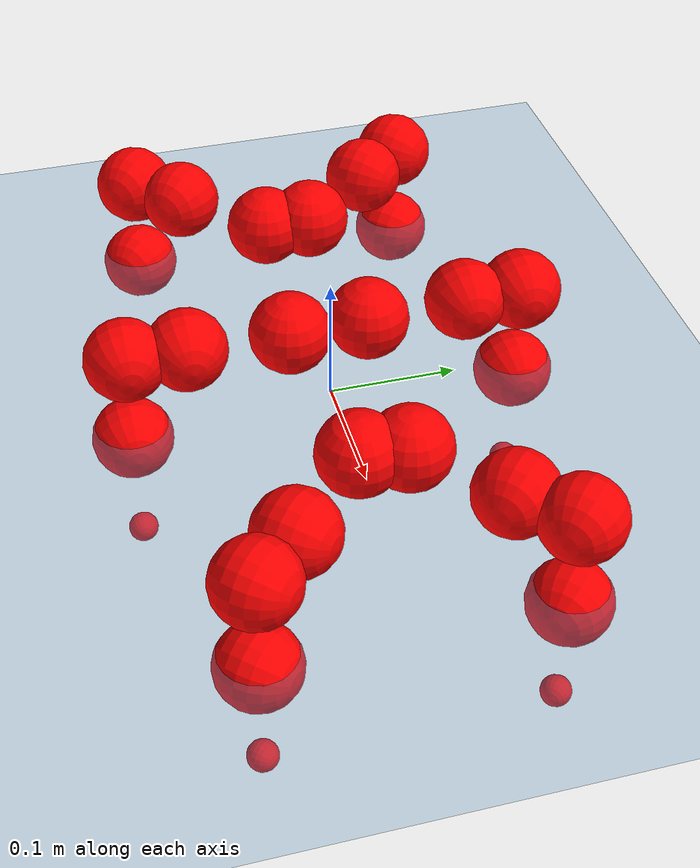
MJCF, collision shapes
<mujoco model="Golem">
  <compiler angle="radian" assetdir="assets" balanceinertia="true" inertiafromgeom="false"/>

  <option timestep="0.005" density="1.2" viscosity="2e-05"/>

  <size nkey="1"/>

  <visual>
    <quality shadowsize="8192"/>
    <map shadowclip="0.5"/>
  </visual>

  <default>
    <default class="/">
      <joint armature="0.01" damping="0.01" frictionloss="0.01"/>
      <geom contype="0" conaffinity="0" group="1" solref="-1000 -80"/>
      <site size="0.01 0.005 0.005" group="5"/>
      <general forcelimited="true" biastype="affine" gainprm="25" biasprm="0 -25 -0.5"/>
      <default class="visual">
        <geom type="mesh" group="2"/>
      </default>
      <default class="collision">
        <geom group="3"/>
      </default>
      <default class="foot">
        <geom size="0.01 0 0" condim="6" group="4" priority="1" solimp="0.015 1 0.01"/>
      </default>
      <default class="reward_collision_sphere">
        <geom group="5" rgba="1 0 0 1"/>
      </default>
    </default>
  </default>

  <asset>
    <texture type="skybox" colorspace="auto" name="//unnamed_texture_0" builtin="gradient" rgb1="0.95 0.95 0.95" rgb2="0.95 0.95 0.95" width="100" height="600"/>
    <texture type="2d" colorspace="auto" name="texplane" builtin="checker" rgb1="0.345 0.575 0.748" rgb2="0.345 0.575 0.748" markrgb="1 1 1" width="512" height="512"/>
    <material name="MatPlane" class="/" texture="texplane" texuniform="true" texrepeat="2 2" specular="0.9"/>
    <mesh name="body" class="/" file="body.stl" scale="0.001 0.001 0.001"/>
    <mesh name="coxa" class="/" file="coxa.stl" scale="0.001 0.001 0.001"/>
    <mesh name="femur" class="/" file="femur.stl" scale="0.001 0.001 0.001"/>
    <mesh name="tibia" class="/" file="tibia.stl" scale="0.001 0.001 0.001"/>
    <mesh name="tarsus" class="/" file="tarsus.stl" scale="0.001 0.001 0.001"/>
  </asset>

  <worldbody>
    <geom name="floor" class="/" size="100 100 0.125" type="plane" group="0" material="MatPlane"/>
    <light name="toplight_shadow" class="/" pos="0 0 5" dir="0.0990148 0.0990148 -0.990148" type="directional" ambient="0.04 0.04 0.04" diffuse="0.55 0.55 0.55" specular="0.12 0.12 0.12"/>
    <light name="toplight_fill" class="/" pos="0 0 5" dir="0.0990148 0.0990148 -0.990148" type="directional" castshadow="false" ambient="0.04 0.04 0.04" diffuse="0.3 0.3 0.3" specular="0.08 0.08 0.08"/>
    <body name="trunk" pos="0.000221727 -0.000220775 -0.000617483" quat="0.999999 0.000618476 -0.000817669 -0.000356382">
      <inertial pos="-0.000666757 -0.000263865 -0.00354013" quat="1 -7.36173e-05 -1.418e-05 -0.00013083" mass="1.82721" diaginertia="0.00602399 0.000153907 0.0105492"/>
      <joint name="//unnamed_joint_0" type="free"/>
      <geom name="//unnamed_geom_1" class="/" pos="0 0 0.0647624" quat="1 0 0 0" type="mesh" rgba="0.9 0.9 0.9 1" mesh="body"/>
      <site name="imu" class="/" pos="0.127332 0.00135962 0.100108" size="0.00783337"/>
      <camera name="track" class="/" pos="0 -0.868244 0" quat="0.707107 0.707107 0 0" mode="trackcom"/>
      <camera name="ego_camera" class="/" pos="0.117517 0 0.101191" quat="-0.5 -0.5 0.5 0.5"/>
      <body name="coxa_RR" pos="-0.161877 -0.0357927 0.0645481" quat="0.382199 -0.000116853 -0.000984889 -0.92408">
        <inertial pos="-0.000123413 0.000216803 0.00154048" quat="1 0.000318516 0.000317558 -0.0004487" mass="0.0978154" diaginertia="0.00609664 0.000155582 0.0107516"/>
        <joint name="coxa_joint_RR" class="/" pos="0 0 0" axis="0.00571139 -0.00319674 -0.999979" range="-3.15656 3.10308" armature="0.00778751" damping="0.00102687" frictionloss="0.00775195"/>
        <geom name="//unnamed_geom_2" class="/" type="mesh" rgba="0.2 0.2 0.2 1" mesh="coxa"/>
        <geom name="//unnamed_geom_3" class="reward_collision_sphere" size="0.0313335" pos="-0.0271192 0 0"/>
        <body name="femur_RR" pos="0.0552195 0.00239745 -0.00102075" quat="0.499783 -0.500056 0.500038 0.500122">
          <inertial pos="-0.00034634 -1.89336e-05 0.000558824" quat="0.999997 0.000362983 0.00225528 -0.000916667" mass="0.0966875" diaginertia="0.00599452 0.000153549 0.0107619"/>
          <joint name="femur_joint_RR" class="/" pos="0 0 0" axis="-0.00199387 0.00040232 -0.999998" range="-3.10534 3.13935" armature="0.00728074" damping="0.000525283" frictionloss="0.00820047"/>
          <geom name="//unnamed_geom_4" class="/" type="mesh" rgba="0.9 0.9 0.9 1" mesh="femur"/>
          <geom name="//unnamed_geom_5" class="reward_collision_sphere" size="0.0313335"/>
          <body name="tibia_RR" pos="-0.00121497 -0.045788 0.00211137" quat="6.99449e-05 1 -0.000184611 -1.65469e-05">
            <inertial pos="0.00100526 0.000246985 0.000440765" quat="0.999997 -0.000122242 -0.00211915 0.00149008" mass="0.0974132" diaginertia="0.00610912 0.000153788 0.0104393"/>
            <joint name="tibia_joint_RR" class="/" pos="0 0 0" axis="0.00291256 0.00762999 0.999967" range="-3.10249 3.14075" armature="0.00744739" damping="0" frictionloss="0.00778685"/>
            <geom name="//unnamed_geom_6" class="/" type="mesh" rgba="0.2 0.2 0.2 1" mesh="tibia"/>
            <geom name="//unnamed_geom_7" class="reward_collision_sphere" size="0.0313335"/>
            <body name="tarsus_RR" pos="0.0775438 0.000416768 -0.00165036" quat="1 8.68629e-05 0.00040295 0.000145254">
              <inertial pos="0.0553082 0.000619363 -0.000381714" quat="0.499723 0.500588 0.499786 0.499903" mass="0.0953203" diaginertia="0.00595785 0.000153821 0.0105382"/>
              <joint name="tarsus_joint_RR" class="/" pos="0 0 0" axis="-0.00312546 0.000721172 0.999995" range="-3.12301 3.13467" armature="0.00819109" damping="0" frictionloss="0.00778329"/>
              <geom name="//unnamed_geom_8" class="/" type="mesh" rgba="0.9 0.9 0.9 1" mesh="tarsus"/>
              <geom name="foot_1" class="foot" size="0.00741098" pos="0.101245 0 0" quat="0 -0.707107 0 0.707107"/>
              <geom name="//unnamed_geom_10" class="reward_collision_sphere" size="0.0313335"/>
              <geom name="//unnamed_geom_11" class="reward_collision_sphere" size="0.01175" pos="0.0971773 0 0"/>
              <site name="foot_1" class="foot" pos="0.101245 0 0" quat="0 -0.707107 0 0.707107" size="0.00783337"/>
            </body>
          </body>
        </body>
      </body>
      <body name="coxa_RM" pos="-0.000190132 -0.058082 0.0649549" quat="0.706899 0.00062502 0.000453156 -0.707314">
        <inertial pos="-0.000268768 -0.00139807 0.00034475" quat="0.999997 -0.000262682 0.00116596 0.00230162" mass="0.0953808" diaginertia="0.00595527 0.000155372 0.0107447"/>
        <joint name="coxa_joint_RM" class="/" pos="0 0 0" axis="0.00832445 -0.00378955 -0.999958" range="-3.14253 3.16088" armature="0.00863185" damping="0.00177605" frictionloss="0.00764714"/>
        <geom name="//unnamed_geom_12" class="/" type="mesh" rgba="0.2 0.2 0.2 1" mesh="coxa"/>
        <geom name="//unnamed_geom_13" class="reward_collision_sphere" size="0.0313335" pos="-0.0271192 0 0"/>
        <body name="femur_RM" pos="0.0511815 -0.000305198 -8.80006e-05" quat="0.500054 -0.499814 0.500025 0.500107">
          <inertial pos="1.54153e-05 -0.000744932 0.000193243" quat="0.999995 -0.0016593 0.00129508 0.00214398" mass="0.0958844" diaginertia="0.00593784 0.000157248 0.0108173"/>
          <joint name="femur_joint_RM" class="/" pos="0 0 0" axis="-0.00133034 0.0038649 -0.999992" range="-3.126 3.13865" armature="0.00760274" damping="0.0020625" frictionloss="0.0079317"/>
          <geom name="//unnamed_geom_14" class="/" type="mesh" rgba="0.9 0.9 0.9 1" mesh="femur"/>
          <geom name="//unnamed_geom_15" class="reward_collision_sphere" size="0.0313335"/>
          <body name="tibia_RM" pos="0.000166404 -0.0452184 -0.000182308" quat="7.14481e-06 1 -0.000215051 0.000199806">
            <inertial pos="-0.000849612 -0.00114719 -0.00145178" quat="0.999979 0.00102186 0.00123034 -0.00627489" mass="0.0955396" diaginertia="0.00614983 0.000154605 0.0107466"/>
            <joint name="tibia_joint_RM" class="/" pos="0 0 0" axis="-0.00144773 0.00165247 0.999998" range="-3.14248 3.15611" armature="0.00843119" damping="0.000101657" frictionloss="0.008645"/>
            <geom name="//unnamed_geom_16" class="/" type="mesh" rgba="0.2 0.2 0.2 1" mesh="tibia"/>
            <geom name="//unnamed_geom_17" class="reward_collision_sphere" size="0.0313335"/>
            <body name="tarsus_RM" pos="0.0779084 0.000730169 0.00191599" quat="1 0.000132675 0.000158983 5.46408e-05">
              <inertial pos="0.0545562 0.00161964 0.000116687" quat="0.500695 0.499445 0.499113 0.500744" mass="0.0957654" diaginertia="0.00597981 0.000152349 0.0105861"/>
              <joint name="tarsus_joint_RM" class="/" pos="0 0 0" axis="-0.000773887 0.000242201 1" range="-3.10196 3.12426" armature="0.00868627" damping="0" frictionloss="0.00794402"/>
              <geom name="//unnamed_geom_18" class="/" type="mesh" rgba="0.9 0.9 0.9 1" mesh="tarsus"/>
              <geom name="foot_2" class="foot" size="0.00838718" pos="0.101245 0 0" quat="0 -0.707107 0 0.707107"/>
              <geom name="//unnamed_geom_20" class="reward_collision_sphere" size="0.0313335"/>
              <geom name="//unnamed_geom_21" class="reward_collision_sphere" size="0.01175" pos="0.0971773 0 0"/>
              <site name="foot_2" class="foot" pos="0.101245 0 0" quat="0 -0.707107 0 0.707107" size="0.00783337"/>
            </body>
          </body>
        </body>
      </body>
      <body name="coxa_RF" pos="0.160827 -0.0366881 0.0670085" quat="0.923693 -0.000325498 0.000276614 -0.383134">
        <inertial pos="-0.000333865 -0.00246849 0.000404794" quat="0.999997 0.000970372 0.0019663 0.000929112" mass="0.0974066" diaginertia="0.00607983 0.00015391 0.0106217"/>
        <joint name="coxa_joint_RF" class="/" pos="0 0 0" axis="0.00336914 0.00250502 -0.999991" range="-3.12019 3.17302" armature="0.00788915" damping="0" frictionloss="0.0076801"/>
        <geom name="//unnamed_geom_22" class="/" type="mesh" rgba="0.2 0.2 0.2 1" mesh="coxa"/>
        <geom name="//unnamed_geom_23" class="reward_collision_sphere" size="0.0313335" pos="-0.0271192 0 0"/>
        <body name="femur_RF" pos="0.0563276 0.00098162 -0.00161685" quat="0.499777 -0.500176 0.499489 0.500557">
          <inertial pos="0.000335921 -0.0009334 0.00178044" quat="0.999957 0.00275322 -0.00195583 0.00868201" mass="0.0972515" diaginertia="0.00605896 0.00015105 0.0106994"/>
          <joint name="femur_joint_RF" class="/" pos="0 0 0" axis="0.000483186 -0.00441701 -0.99999" stiffness="0.000600225" range="-3.13214 3.13758" armature="0.00787435" damping="0" frictionloss="0.00718534"/>
          <geom name="//unnamed_geom_24" class="/" type="mesh" rgba="0.9 0.9 0.9 1" mesh="femur"/>
          <geom name="//unnamed_geom_25" class="reward_collision_sphere" size="0.0313335"/>
          <body name="tibia_RF" pos="0.000537458 -0.0485934 3.05954e-05" quat="-0.000358204 1 -0.000108313 -0.000111694">
            <inertial pos="9.01859e-05 -7.52194e-05 0.000982602" quat="0.999999 0.000648775 -0.00100815 0.000379799" mass="0.0960161" diaginertia="0.00603159 0.00015617 0.0107725"/>
            <joint name="tibia_joint_RF" class="/" pos="0 0 0" axis="0.00296007 -0.00472026 0.999984" range="-3.12931 3.14459" armature="0.00817163" damping="0.00806429" frictionloss="0.00785803"/>
            <geom name="//unnamed_geom_26" class="/" type="mesh" rgba="0.2 0.2 0.2 1" mesh="tibia"/>
            <geom name="//unnamed_geom_27" class="reward_collision_sphere" size="0.0313335"/>
            <body name="tarsus_RF" pos="0.0792034 0.00176385 2.68691e-05" quat="1 0.000348735 0.000624387 0.000493382">
              <inertial pos="0.0523964 -0.000220911 0.00210399" quat="0.500868 0.499474 0.497711 0.501936" mass="0.0944185" diaginertia="0.00602553 0.000150383 0.0104218"/>
              <joint name="tarsus_joint_RF" class="/" pos="0 0 0" axis="0.00260879 -0.011609 0.999929" range="-3.10169 3.12336" armature="0.00779981" damping="0" frictionloss="0.00792574"/>
              <geom name="//unnamed_geom_28" class="/" type="mesh" rgba="0.9 0.9 0.9 1" mesh="tarsus"/>
              <geom name="foot_3" class="foot" size="0.00773453" pos="0.101245 0 0" quat="0 -0.707107 0 0.707107"/>
              <geom name="//unnamed_geom_30" class="reward_collision_sphere" size="0.0313335"/>
              <geom name="//unnamed_geom_31" class="reward_collision_sphere" size="0.01175" pos="0.0971773 0 0"/>
              <site name="foot_3" class="foot" pos="0.101245 0 0" quat="0 -0.707107 0 0.707107" size="0.00783337"/>
            </body>
          </body>
        </body>
      </body>
      <body name="coxa_LR" pos="-0.159207 0.0386382 0.0667487" quat="0.383026 -0.000470899 0.000658477 0.923737">
        <inertial pos="0.00193279 -0.000213087 0.0011647" quat="0.999992 0.00262085 -0.00271767 -0.00141191" mass="0.0948675" diaginertia="0.00601837 0.000152421 0.0104874"/>
        <joint name="coxa_joint_LR" class="/" pos="0 0 0" axis="-0.00306773 -0.00670881 -0.999973" range="-3.13157 3.14887" armature="0.00819271" damping="0.00863565" frictionloss="0.00795808"/>
        <geom name="//unnamed_geom_32" class="/" type="mesh" rgba="0.2 0.2 0.2 1" mesh="coxa"/>
        <geom name="//unnamed_geom_33" class="reward_collision_sphere" size="0.0313335" pos="-0.0271192 0 0"/>
        <body name="femur_LR" pos="0.054746 -0.00406171 -0.00223134" quat="0.499592 -0.500261 0.499495 0.50065">
          <inertial pos="-0.00126567 -0.000410142 0.000598177" quat="0.999999 -0.000239649 0.00142364 -0.000543863" mass="0.0953282" diaginertia="0.00600221 0.000153011 0.0104372"/>
          <joint name="femur_joint_LR" class="/" pos="0 0 0" axis="-0.0018211 -0.00133844 0.999997" stiffness="0.000435417" range="-3.15299 3.18287" armature="0.00766672" damping="0.00614828" frictionloss="0.00864871"/>
          <geom name="//unnamed_geom_34" class="/" type="mesh" rgba="0.9 0.9 0.9 1" mesh="femur"/>
          <geom name="//unnamed_geom_35" class="reward_collision_sphere" size="0.0313335"/>
          <body name="tibia_LR" pos="0.000509647 -0.0490614 -0.00277463" quat="4.68929e-05 1 1.76987e-05 -0.00018814">
            <inertial pos="-0.00106279 -0.000377353 0.000534708" quat="0.999993 0.00203561 -0.00249169 0.00208388" mass="0.0969464" diaginertia="0.00604996 0.000155339 0.0106377"/>
            <joint name="tibia_joint_LR" class="/" pos="0 0 0" axis="-0.000857967 0.000907114 -0.999999" range="-3.15634 3.10967" armature="0.00710497" damping="0" frictionloss="0.00805078"/>
            <geom name="//unnamed_geom_36" class="/" type="mesh" rgba="0.2 0.2 0.2 1" mesh="tibia"/>
            <geom name="//unnamed_geom_37" class="reward_collision_sphere" size="0.0313335"/>
            <body name="tarsus_LR" pos="0.0796329 0.000172778 -0.000214982" quat="1 0.000102986 -6.0717e-05 0.000421964">
              <inertial pos="0.0556866 0.000828643 0.000460803" quat="0.499781 0.499901 0.500079 0.500239" mass="0.0958071" diaginertia="0.00600379 0.000155345 0.0105331"/>
              <joint name="tarsus_joint_LR" class="/" pos="0 0 0" axis="-0.000652026 -0.00195016 -0.999998" range="-3.10401 3.13527" armature="0.00780751" damping="0" frictionloss="0.00792563"/>
              <geom name="//unnamed_geom_38" class="/" type="mesh" rgba="0.9 0.9 0.9 1" mesh="tarsus"/>
              <geom name="foot_4" class="foot" size="0.00740908" pos="0.101245 0 0" quat="0.707107 0 -0.707107 0"/>
              <geom name="//unnamed_geom_40" class="reward_collision_sphere" size="0.0313335"/>
              <geom name="//unnamed_geom_41" class="reward_collision_sphere" size="0.01175" pos="0.0971773 0 0"/>
              <site name="foot_4" class="foot" pos="0.101245 0 0" quat="0.707107 0 -0.707107 0" size="0.00783337"/>
            </body>
          </body>
        </body>
      </body>
      <body name="coxa_LM" pos="-0.00341229 0.0574484 0.0642496" quat="0.707343 0.000744227 -0.00106197 0.706869">
        <inertial pos="0.00117994 -0.000269082 0.00082517" quat="0.999997 0.000246645 -0.00235582 0.000723246" mass="0.100018" diaginertia="0.00636251 0.000158447 0.0107877"/>
        <joint name="coxa_joint_LM" class="/" pos="0 0 0" axis="0.0020746 9.03402e-05 -0.999998" stiffness="0.00453575" range="-3.15969 3.1435" armature="0.00772437" damping="0.00824772" frictionloss="0.00817876"/>
        <geom name="//unnamed_geom_42" class="/" type="mesh" rgba="0.2 0.2 0.2 1" mesh="coxa"/>
        <geom name="//unnamed_geom_43" class="reward_collision_sphere" size="0.0313335" pos="-0.0271192 0 0"/>
        <body name="femur_LM" pos="0.0505978 0.00264942 0.000651476" quat="0.500097 -0.499811 0.499954 0.500137">
          <inertial pos="8.8211e-05 -0.000349251 -4.28195e-05" quat="0.999999 -0.000357455 0.00059563 -0.000869481" mass="0.093139" diaginertia="0.00595262 0.000150198 0.0103614"/>
          <joint name="femur_joint_LM" class="/" pos="0 0 0" axis="0.000378595 0.000503758 1" range="-3.15179 3.12841" armature="0.00805136" damping="0" frictionloss="0.00783258"/>
          <geom name="//unnamed_geom_44" class="/" type="mesh" rgba="0.9 0.9 0.9 1" mesh="femur"/>
          <geom name="//unnamed_geom_45" class="reward_collision_sphere" size="0.0313335"/>
          <body name="tibia_LM" pos="0.000545899 -0.0454752 0.00176454" quat="0.000130193 1 7.29788e-05 -3.8663e-05">
            <inertial pos="-0.00191494 0.000475795 0.000228384" quat="1 0.000184588 1.23464e-07 -0.000218149" mass="0.0968596" diaginertia="0.00593509 0.000153329 0.0106458"/>
            <joint name="tibia_joint_LM" class="/" pos="0 0 0" axis="-0.0010677 0.00241114 -0.999997" range="-3.12808 3.13731" armature="0.00793272" damping="0.0029361" frictionloss="0.00798636"/>
            <geom name="//unnamed_geom_46" class="/" type="mesh" rgba="0.2 0.2 0.2 1" mesh="tibia"/>
            <geom name="//unnamed_geom_47" class="reward_collision_sphere" size="0.0313335"/>
            <body name="tarsus_LM" pos="0.0801966 0.000236654 -0.00145931" quat="1 0.000186817 9.58372e-05 -0.000228541">
              <inertial pos="0.054766 0.000437481 -7.54771e-05" quat="0.499506 0.498361 0.500416 0.501712" mass="0.0962368" diaginertia="0.00608188 0.000154435 0.0107558"/>
              <joint name="tarsus_joint_LM" class="/" pos="0 0 0" axis="0.00115498 -0.00211972 -0.999997" stiffness="0.00157132" range="-3.1541 3.12854" armature="0.00783047" damping="0.00758507" frictionloss="0.00743154"/>
              <geom name="//unnamed_geom_48" class="/" type="mesh" rgba="0.9 0.9 0.9 1" mesh="tarsus"/>
              <geom name="foot_5" class="foot" size="0.00788238" pos="0.101245 0 0" quat="0.707107 0 -0.707107 0"/>
              <geom name="//unnamed_geom_50" class="reward_collision_sphere" size="0.0313335"/>
              <geom name="//unnamed_geom_51" class="reward_collision_sphere" size="0.01175" pos="0.0971773 0 0"/>
              <site name="foot_5" class="foot" pos="0.101245 0 0" quat="0.707107 0 -0.707107 0" size="0.00783337"/>
            </body>
          </body>
        </body>
      </body>
      <body name="coxa_LF" pos="0.162634 0.0375559 0.0651759" quat="0.923896 0.000100152 2.95198e-06 0.382644">
        <inertial pos="-0.000547687 -0.000309521 -0.000244079" quat="0.999995 0.00159894 -0.000649132 0.00265333" mass="0.0949752" diaginertia="0.00598971 0.000150271 0.0104795"/>
        <joint name="coxa_joint_LF" class="/" pos="0 0 0" axis="0.00231146 -0.00339925 -0.999992" range="-3.14447 3.15813" armature="0.00783812" damping="0" frictionloss="0.00760083"/>
        <geom name="//unnamed_geom_52" class="/" type="mesh" rgba="0.2 0.2 0.2 1" mesh="coxa"/>
        <geom name="//unnamed_geom_53" class="reward_collision_sphere" size="0.0313335" pos="-0.0271192 0 0"/>
        <body name="femur_LF" pos="0.0529247 -0.00140564 -0.00239432" quat="0.49995 -0.500056 0.500068 0.499925">
          <inertial pos="6.92147e-05 0.000304674 -0.000390096" quat="0.999944 0.00430641 0.00561756 0.00790849" mass="0.0964497" diaginertia="0.00612456 0.000151437 0.0106635"/>
          <joint name="femur_joint_LF" class="/" pos="0 0 0" axis="-0.00192494 0.00255375 0.999995" range="-3.13407 3.15479" armature="0.007626" damping="0" frictionloss="0.00696992"/>
          <geom name="//unnamed_geom_54" class="/" type="mesh" rgba="0.9 0.9 0.9 1" mesh="femur"/>
          <geom name="//unnamed_geom_55" class="reward_collision_sphere" size="0.0313335"/>
          <body name="tibia_LF" pos="1.3334e-05 -0.047087 0.000198124" quat="-0.000174706 1 -0.000159385 -6.76568e-05">
            <inertial pos="-2.9889e-05 -0.000606382 0.000202399" quat="0.999995 -0.000595131 0.00313657 0.000778952" mass="0.0962384" diaginertia="0.00610872 0.000155467 0.0106843"/>
            <joint name="tibia_joint_LF" class="/" pos="0 0 0" axis="-0.00249678 -0.001641 -0.999996" range="-3.18041 3.14594" armature="0.00759874" damping="3.51791e-05" frictionloss="0.00776478"/>
            <geom name="//unnamed_geom_56" class="/" type="mesh" rgba="0.2 0.2 0.2 1" mesh="tibia"/>
            <geom name="//unnamed_geom_57" class="reward_collision_sphere" size="0.0313335"/>
            <body name="tarsus_LF" pos="0.0802454 -0.000277579 0.00037234" quat="1 1.03652e-05 -1.03869e-05 -2.08929e-05">
              <inertial pos="0.0562752 0.000898939 0.00231005" quat="0.500585 0.499697 0.499283 0.500434" mass="0.0975631" diaginertia="0.00603936 0.000156243 0.0108098"/>
              <joint name="tarsus_joint_LF" class="/" pos="0 0 0" axis="-0.00212587 -0.00461799 -0.999987" stiffness="0.0264626" range="-3.13869 3.13016" armature="0.00787746" damping="0.0271265" frictionloss="0.00797336"/>
              <geom name="//unnamed_geom_58" class="/" type="mesh" rgba="0.9 0.9 0.9 1" mesh="tarsus"/>
              <geom name="foot_6" class="foot" size="0.00792405" pos="0.101245 0 0" quat="0.707107 0 -0.707107 0"/>
              <geom name="//unnamed_geom_60" class="reward_collision_sphere" size="0.0313335"/>
              <geom name="//unnamed_geom_61" class="reward_collision_sphere" size="0.01175" pos="0.0971773 0 0"/>
              <site name="foot_6" class="foot" pos="0.101245 0 0" quat="0.707107 0 -0.707107 0" size="0.00783337"/>
            </body>
          </body>
        </body>
      </body>
    </body>
  </worldbody>

  <contact>
    <pair class="/" geom1="floor" geom2="foot_1" name="//unnamed_contact_0"/>
    <pair class="/" geom1="floor" geom2="foot_2" name="//unnamed_contact_1"/>
    <pair class="/" geom1="floor" geom2="foot_3" name="//unnamed_contact_2"/>
    <pair class="/" geom1="floor" geom2="foot_4" name="//unnamed_contact_3"/>
    <pair class="/" geom1="floor" geom2="foot_5" name="//unnamed_contact_4"/>
    <pair class="/" geom1="floor" geom2="foot_6" name="//unnamed_contact_5"/>
  </contact>

  <actuator>
    <general name="coxa_joint_RR" class="/" joint="coxa_joint_RR" forcerange="-5.82485 5.82485" gainprm="17.931" biasprm="0 -17.931 -0.387501"/>
    <general name="femur_joint_RR" class="/" joint="femur_joint_RR" forcerange="-5.52448 5.52448" gainprm="17.931" biasprm="0 -17.931 -0.387501"/>
    <general name="tibia_joint_RR" class="/" joint="tibia_joint_RR" forcerange="-5.85349 5.85349" gainprm="17.931" biasprm="0 -17.931 -0.387501"/>
    <general name="tarsus_joint_RR" class="/" joint="tarsus_joint_RR" forcerange="-5.67883 5.67883" gainprm="17.931" biasprm="0 -17.931 -0.387501"/>
    <general name="coxa_joint_RM" class="/" joint="coxa_joint_RM" forcerange="-5.84035 5.84035" gainprm="17.931" biasprm="0 -17.931 -0.387501"/>
    <general name="femur_joint_RM" class="/" joint="femur_joint_RM" forcerange="-5.9658 5.9658" gainprm="17.931" biasprm="0 -17.931 -0.387501"/>
    <general name="tibia_joint_RM" class="/" joint="tibia_joint_RM" forcerange="-5.90499 5.90499" gainprm="17.931" biasprm="0 -17.931 -0.387501"/>
    <general name="tarsus_joint_RM" class="/" joint="tarsus_joint_RM" forcerange="-6.1602 6.1602" gainprm="17.931" biasprm="0 -17.931 -0.387501"/>
    <general name="coxa_joint_RF" class="/" joint="coxa_joint_RF" forcerange="-6.06626 6.06626" gainprm="17.931" biasprm="0 -17.931 -0.387501"/>
    <general name="femur_joint_RF" class="/" joint="femur_joint_RF" forcerange="-5.36748 5.36748" gainprm="17.931" biasprm="0 -17.931 -0.387501"/>
    <general name="tibia_joint_RF" class="/" joint="tibia_joint_RF" forcerange="-5.9236 5.9236" gainprm="17.931" biasprm="0 -17.931 -0.387501"/>
    <general name="tarsus_joint_RF" class="/" joint="tarsus_joint_RF" forcerange="-5.79286 5.79286" gainprm="17.931" biasprm="0 -17.931 -0.387501"/>
    <general name="coxa_joint_LR" class="/" joint="coxa_joint_LR" forcerange="-5.5702 5.5702" gainprm="17.931" biasprm="0 -17.931 -0.387501"/>
    <general name="femur_joint_LR" class="/" joint="femur_joint_LR" forcerange="-5.65481 5.65481" gainprm="17.931" biasprm="0 -17.931 -0.387501"/>
    <general name="tibia_joint_LR" class="/" joint="tibia_joint_LR" forcerange="-5.91539 5.91539" gainprm="17.931" biasprm="0 -17.931 -0.387501"/>
    <general name="tarsus_joint_LR" class="/" joint="tarsus_joint_LR" forcerange="-5.63652 5.63652" gainprm="17.931" biasprm="0 -17.931 -0.387501"/>
    <general name="coxa_joint_LM" class="/" joint="coxa_joint_LM" forcerange="-5.69989 5.69989" gainprm="17.931" biasprm="0 -17.931 -0.387501"/>
    <general name="femur_joint_LM" class="/" joint="femur_joint_LM" forcerange="-5.73779 5.73779" gainprm="17.931" biasprm="0 -17.931 -0.387501"/>
    <general name="tibia_joint_LM" class="/" joint="tibia_joint_LM" forcerange="-5.28366 5.28366" gainprm="17.931" biasprm="0 -17.931 -0.387501"/>
    <general name="tarsus_joint_LM" class="/" joint="tarsus_joint_LM" forcerange="-5.73444 5.73444" gainprm="17.931" biasprm="0 -17.931 -0.387501"/>
    <general name="coxa_joint_LF" class="/" joint="coxa_joint_LF" forcerange="-5.97454 5.97454" gainprm="17.931" biasprm="0 -17.931 -0.387501"/>
    <general name="femur_joint_LF" class="/" joint="femur_joint_LF" forcerange="-6.0065 6.0065" gainprm="17.931" biasprm="0 -17.931 -0.387501"/>
    <general name="tibia_joint_LF" class="/" joint="tibia_joint_LF" forcerange="-5.7889 5.7889" gainprm="17.931" biasprm="0 -17.931 -0.387501"/>
    <general name="tarsus_joint_LF" class="/" joint="tarsus_joint_LF" forcerange="-5.89258 5.89258" gainprm="17.931" biasprm="0 -17.931 -0.387501"/>
  </actuator>

  <sensor>
    <gyro site="imu" name="imu_angular_velocity"/>
    <velocimeter site="imu" name="imu_linear_velocity"/>
    <framelinvel objtype="site" objname="foot_1" name="foot_1_global_linear_velocity"/>
    <framelinvel objtype="site" objname="foot_2" name="foot_2_global_linear_velocity"/>
    <framelinvel objtype="site" objname="foot_3" name="foot_3_global_linear_velocity"/>
    <framelinvel objtype="site" objname="foot_4" name="foot_4_global_linear_velocity"/>
    <framelinvel objtype="site" objname="foot_5" name="foot_5_global_linear_velocity"/>
    <framelinvel objtype="site" objname="foot_6" name="foot_6_global_linear_velocity"/>
  </sensor>

  <keyframe>
    <key name="home" qpos="0 0 0.1457 1 0 0 0 0 0 0 0 0 0 0 0 0 0 0 0 0 0 0 0 0 0 0 0 0 0 0 0"/>
  </keyframe>
</mujoco>
